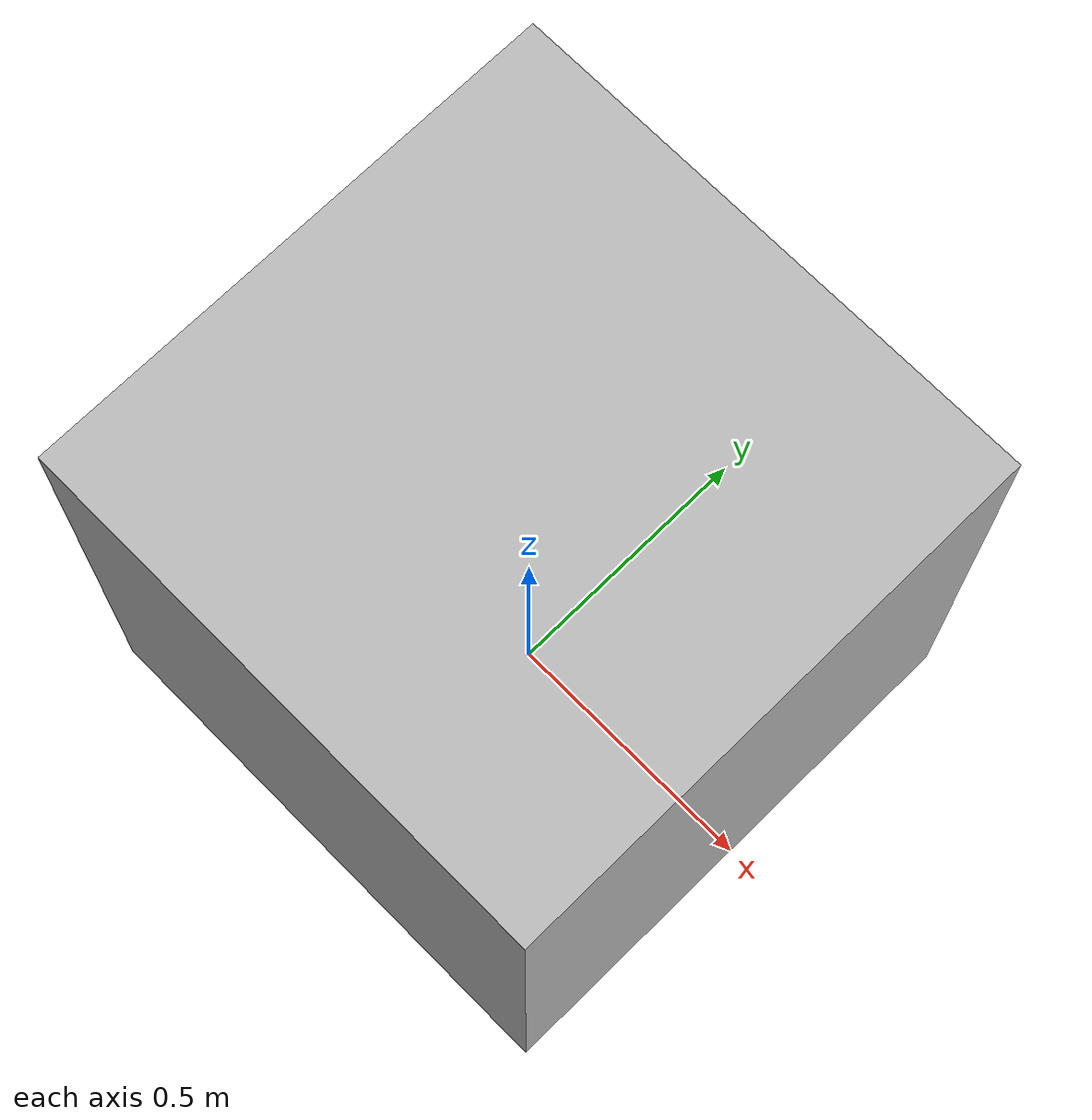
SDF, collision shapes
<?xml version="1.0" ?>
<sdf version="1.6">
  <model name="basic_box_new">

    <link name="link">
      <inertial>
        <mass>2</mass>
        <inertia>
          <ixx>0.083</ixx>       <!-- for a box: ixx = 0.083 * mass * (y*y + z*z) -->
          <ixy>0.0</ixy>         <!-- for a box: ixy = 0 -->
          <ixz>0.0</ixz>         <!-- for a box: ixz = 0 -->
          <iyy>0.083</iyy>       <!-- for a box: iyy = 0.083 * mass * (x*x + z*z) -->
          <iyz>0.0</iyz>         <!-- for a box: iyz = 0 -->
          <izz>0.083</izz>       <!-- for a box: izz = 0.083 * mass * (x*x + y*y) -->
        </inertia>
      </inertial>
      <collision name="collision">
        <pose>0 0 0.5 0 0 0</pose>
        <geometry>
          <box>
            <size>1 1 1</size>
          </box>
        </geometry>
      </collision>
      <visual name="visual">
        <pose>0 0 0 0 0 0</pose>
        <geometry>
          <mesh>
            <uri>model://basic_box_new/meshes/basic_box.dae</uri>
            <scale>2.55 2.55 2.55</scale>
          </mesh>
        </geometry>
      </visual>
    </link>

    <link name="link2">
      <inertial>
        <mass>2</mass>
        <inertia>
          <ixx>0.083</ixx>       <!-- for a box: ixx = 0.083 * mass * (y*y + z*z) -->
          <ixy>0.0</ixy>         <!-- for a box: ixy = 0 -->
          <ixz>0.0</ixz>         <!-- for a box: ixz = 0 -->
          <iyy>0.083</iyy>       <!-- for a box: iyy = 0.083 * mass * (x*x + z*z) -->
          <iyz>0.0</iyz>         <!-- for a box: iyz = 0 -->
          <izz>0.083</izz>       <!-- for a box: izz = 0.083 * mass * (x*x + y*y) -->
        </inertia>
      </inertial>
      <collision name="collision">
        <pose>0 0 0.5 0 0 0</pose>
        <geometry>
          <box>
            <size>1 1 1</size>
          </box>
        </geometry>
      </collision>
      <visual name="visual">
        <pose>0 0 1 0 0 0</pose>
        <geometry>
          <mesh>
            <uri>model://basic_box_new/meshes/basic_box.dae</uri>
            <scale>2.55 2.55 2.55</scale>
          </mesh>
        </geometry>
      </visual>
    </link>

    <link name="link3">
      <inertial>
        <mass>2</mass>
        <inertia>
          <ixx>0.083</ixx>       <!-- for a box: ixx = 0.083 * mass * (y*y + z*z) -->
          <ixy>0.0</ixy>         <!-- for a box: ixy = 0 -->
          <ixz>0.0</ixz>         <!-- for a box: ixz = 0 -->
          <iyy>0.083</iyy>       <!-- for a box: iyy = 0.083 * mass * (x*x + z*z) -->
          <iyz>0.0</iyz>         <!-- for a box: iyz = 0 -->
          <izz>0.083</izz>       <!-- for a box: izz = 0.083 * mass * (x*x + y*y) -->
        </inertia>
      </inertial>
      <collision name="collision">
        <pose>0 0 0.5 0 0 0</pose>
        <geometry>
          <box>
            <size>1 1 1</size>
          </box>
        </geometry>
      </collision>
      <visual name="visual">
        <pose>0 0 2 0 0 0</pose>
        <geometry>
          <mesh>
            <uri>model://basic_box_new/meshes/basic_box.dae</uri>
            <scale>2.55 2.55 2.55</scale>
          </mesh>
        </geometry>
      </visual>
    </link>
  </model>
</sdf>
